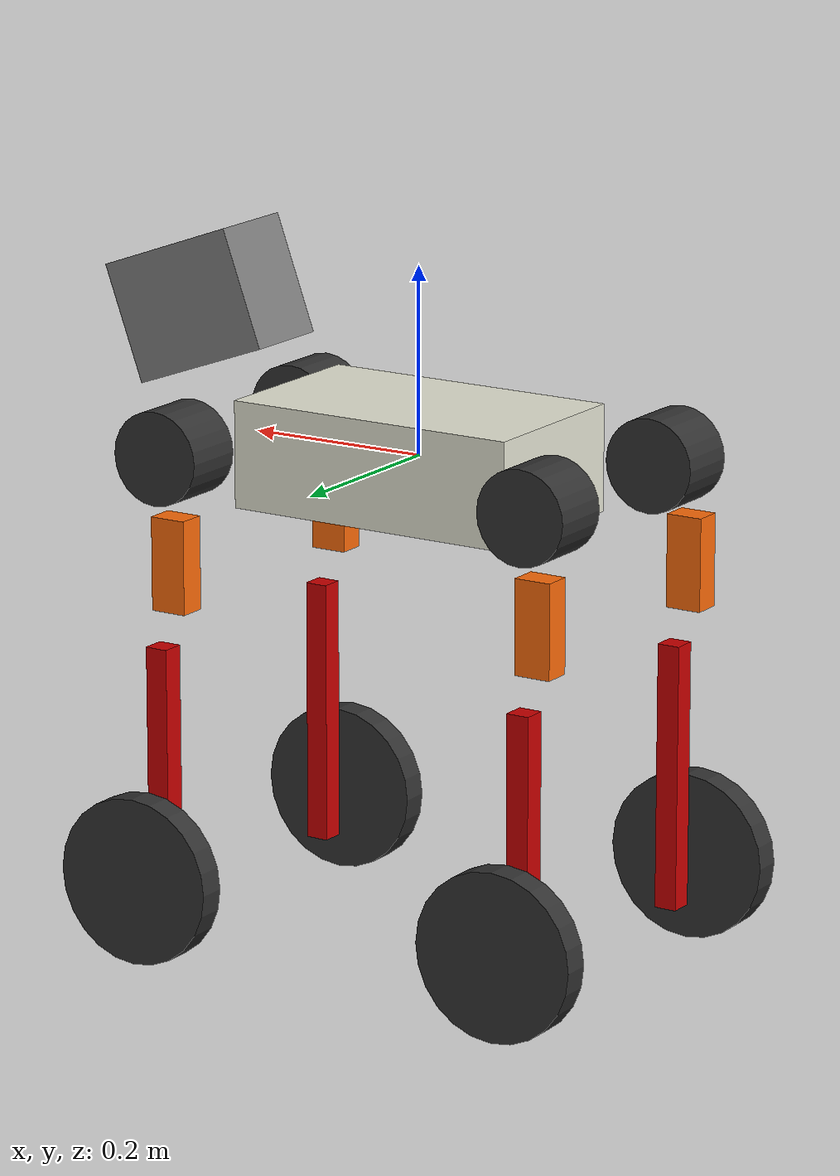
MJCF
<?xml version='1.0' encoding='utf-8'?>
<mujoco model="magicdog">
  <compiler angle="radian" boundmass="1e-06" boundinertia="1e-08" meshdir=".." />
  <worldbody>
    <body name="base">
      <inertial pos="0.0308104 -0.00159274 0.0193791" quat="0.0030776 0.597643 0.0101379 0.801693" mass="8.64805" diaginertia="0.153348 0.14566 0.0376323" />
      <joint type="free" />
      <geom size="0.1635 0.097 0.057" type="box" rgba="0.913725 0.913725 0.847059 1" />
      <geom size="0.08 0.05 0.065" pos="0.261153 0 0.135146" quat="0.984813 0 0.173616 0" type="box" />
      <body name="FR_hip" pos="0.220365 -0.0499879 0">
        <inertial pos="-0.0346729 0.00391302 0" quat="0.479256 0.479256 0.519917 0.519917" mass="0.359964" diaginertia="0.000479177 0.000469733 0.000100391" />
        <joint name="FR_hip_joint" pos="0 0 0" axis="1 0 0" range="-0.645772 0.785398" actuatorfrcrange="-25 25" />
        <geom size="0.05 0.035" pos="0 -0.075 0" quat="0.707107 0.707107 0 0" type="cylinder" rgba="0.2 0.2 0.2 1" />
        <body name="FR_thigh" pos="0 -0.099 0">
          <inertial pos="-0.00334736 0.0314366 -0.0320095" quat="0.986404 -0.155231 0.0349207 -0.0411304" mass="1.5726" diaginertia="0.00900833 0.00837662 0.00223511" />
          <joint name="FR_thigh_joint" pos="0 0 0" axis="0 1 0" range="-1.26536 3.62156" actuatorfrcrange="-25 25" />
          <geom size="0.05 0.015 0.02" pos="-0.018 0 -0.11" quat="0.707107 0 0.707107 0" type="box" rgba="1 0.423529 0.0392157 1" />
          <body name="FR_calf" pos="0 0 -0.2">
            <inertial pos="0.00526 -0.006732 -0.202313" quat="0.693178 0.00554934 0.035533 0.719868" mass="1.01853" diaginertia="0.00733514 0.00676676 0.000779094" />
            <joint name="FR_calf_joint" pos="0 0 0" axis="0 1 0" range="-2.36684 -0.394619" actuatorfrcrange="-37.5 37.5" />
            <geom size="0.144425 0.0125 0.0125" pos="0 0 -0.14625" quat="0.707107 0 0.707107 0" type="box" rgba="0.8 0 0 1" />
            <body name="FR_wheel" pos="0 0 -0.24351">
              <inertial pos="0 -0.03734 0" quat="0.707107 0 0 0.707107" mass="0.510931" diaginertia="0.001321 0.000707 0.000707" />
              <joint name="FR_wheel_joint" pos="0 0 0" axis="0 1 0" actuatorfrcrange="-15 15" />
              <geom size="0.09 0.015" pos="0 -0.045 0" quat="0.707107 0.707107 0 0" type="cylinder" rgba="0.2 0.2 0.2 1" />
            </body>
          </body>
        </body>
      </body>
      <body name="FL_hip" pos="0.220365 0.0499879 0">
        <inertial pos="-0.0346729 -0.00391302 0" quat="0.519917 0.519917 0.479256 0.479256" mass="0.359964" diaginertia="0.000479177 0.000469733 0.000100391" />
        <joint name="FL_hip_joint" pos="0 0 0" axis="1 0 0" range="-0.785398 0.645772" actuatorfrcrange="-25 25" />
        <geom size="0.05 0.035" pos="0 0.075 0" quat="0.707107 0.707107 0 0" type="cylinder" rgba="0.2 0.2 0.2 1" />
        <body name="FL_thigh" pos="0 0.099 0">
          <inertial pos="-0.00334736 -0.0314366 -0.0320095" quat="0.986404 0.155231 0.0349207 0.0411304" mass="1.5726" diaginertia="0.00900833 0.00837662 0.00223511" />
          <joint name="FL_thigh_joint" pos="0 0 0" axis="0 1 0" range="-1.26536 3.62156" actuatorfrcrange="-25 25" />
          <geom size="0.05 0.015 0.02" pos="-0.018 0 -0.11" quat="0.707107 0 0.707107 0" type="box" rgba="1 0.423529 0.0392157 1" />
          <body name="FL_calf" pos="0 0 -0.2">
            <inertial pos="0.005351 0.003694 -0.202438" quat="0.71371 0.0280769 0.0117135 0.69978" mass="1.01853" diaginertia="0.00736086 0.00681759 0.000821546" />
            <joint name="FL_calf_joint" pos="0 0 0" axis="0 1 0" range="-2.36684 -0.394619" actuatorfrcrange="-37.5 37.5" />
            <geom size="0.144425 0.0125 0.0125" pos="0 0 -0.14625" quat="0.707107 0 0.707107 0" type="box" rgba="0.8 0 0 1" />
            <body name="FL_wheel" pos="0 0 -0.24351">
              <inertial pos="0 0.03734 0" quat="0.707107 0 0 0.707107" mass="0.510931" diaginertia="0.001321 0.000707 0.000707" />
              <joint name="FL_wheel_joint" pos="0 0 0" axis="0 1 0" actuatorfrcrange="-15 15" />
              <geom size="0.09 0.015" pos="0 0.045 0" quat="0.707107 0.707107 0 0" type="cylinder" rgba="0.2 0.2 0.2 1" />
            </body>
          </body>
        </body>
      </body>
      <body name="RR_hip" pos="-0.220365 -0.0499879 0">
        <inertial pos="0.0346729 0.00391302 0" quat="0.519917 0.519917 0.479256 0.479256" mass="0.359964" diaginertia="0.000479177 0.000469733 0.000100391" />
        <joint name="RR_hip_joint" pos="0 0 0" axis="1 0 0" range="-0.645772 0.785398" actuatorfrcrange="-25 25" />
        <geom size="0.05 0.035" pos="0 -0.075 0" quat="0.707107 0.707107 0 0" type="cylinder" rgba="0.2 0.2 0.2 1" />
        <body name="RR_thigh" pos="0 -0.099 0">
          <inertial pos="-0.00334736 0.0314366 -0.0320095" quat="0.986404 -0.155231 0.0349207 -0.0411304" mass="1.5726" diaginertia="0.00900833 0.00837662 0.00223511" />
          <joint name="RR_thigh_joint" pos="0 0 0" axis="0 1 0" range="-1.26536 3.62156" actuatorfrcrange="-25 25" />
          <geom size="0.05 0.015 0.02" pos="-0.018 0 -0.11" quat="0.707107 0 0.707107 0" type="box" rgba="1 0.423529 0.0392157 1" />
          <body name="RR_calf" pos="0 0 -0.2">
            <inertial pos="0.00526 -0.006732 -0.202313" quat="0.693178 0.00554934 0.035533 0.719868" mass="1.01853" diaginertia="0.00733514 0.00676676 0.000779094" />
            <joint name="RR_calf_joint" pos="0 0 0" axis="0 1 0" range="-2.36684 -0.394619" actuatorfrcrange="-37.5 37.5" />
            <geom size="0.144425 0.0125 0.0125" pos="0 0 -0.14625" quat="0.707107 0 0.707107 0" type="box" rgba="0.8 0 0 1" />
            <body name="RR_wheel" pos="0 0 -0.24351">
              <inertial pos="0 -0.03734 0" quat="0.707107 0 0 0.707107" mass="0.510931" diaginertia="0.001321 0.000707 0.000707" />
              <joint name="RR_wheel_joint" pos="0 0 0" axis="0 1 0" actuatorfrcrange="-15 15" />
              <geom size="0.09 0.015" pos="0 -0.045 0" quat="0.707107 0.707107 0 0" type="cylinder" rgba="0.2 0.2 0.2 1" />
            </body>
          </body>
        </body>
      </body>
      <body name="RL_hip" pos="-0.220365 0.0499879 0">
        <inertial pos="0.0346729 -0.00391302 0" quat="0.479256 0.479256 0.519917 0.519917" mass="0.359964" diaginertia="0.000479177 0.000469733 0.000100391" />
        <joint name="RL_hip_joint" pos="0 0 0" axis="1 0 0" range="-0.785398 0.645772" actuatorfrcrange="-25 25" />
        <geom size="0.05 0.035" pos="0 0.075 0" quat="0.707107 0.707107 0 0" type="cylinder" rgba="0.2 0.2 0.2 1" />
        <body name="RL_thigh" pos="0 0.099 0">
          <inertial pos="-0.00334736 -0.0314366 -0.0320095" quat="0.986404 0.155231 0.0349207 0.0411304" mass="1.5726" diaginertia="0.00900833 0.00837662 0.00223511" />
          <joint name="RL_thigh_joint" pos="0 0 0" axis="0 1 0" range="-1.26536 3.62156" actuatorfrcrange="-25 25" />
          <geom size="0.05 0.015 0.02" pos="-0.018 0 -0.11" quat="0.707107 0 0.707107 0" type="box" rgba="1 0.423529 0.0392157 1" />
          <body name="RL_calf" pos="0 0 -0.2">
            <inertial pos="0.005351 0.003694 -0.202438" quat="0.71371 0.0280769 0.0117135 0.69978" mass="1.01853" diaginertia="0.00736086 0.00681759 0.000821546" />
            <joint name="RL_calf_joint" pos="0 0 0" axis="0 1 0" range="-2.36684 -0.394619" actuatorfrcrange="-37.5 37.5" />
            <geom size="0.144425 0.0125 0.0125" pos="0 0 -0.14625" quat="0.707107 0 0.707107 0" type="box" rgba="0.8 0 0 1" />
            <body name="RL_wheel" pos="0 0 -0.24351">
              <inertial pos="0 0.03734 0" quat="0.707107 0 0 0.707107" mass="0.510931" diaginertia="0.001321 0.000707 0.000707" />
              <joint name="RL_wheel_joint" pos="0 0 0" axis="0 1 0" actuatorfrcrange="-15 15" />
              <geom size="0.09 0.015" pos="0 0.045 0" quat="0.707107 0.707107 0 0" type="cylinder" rgba="0.2 0.2 0.2 1" />
            </body>
          </body>
        </body>
      </body>
    </body>
  </worldbody>
</mujoco>
